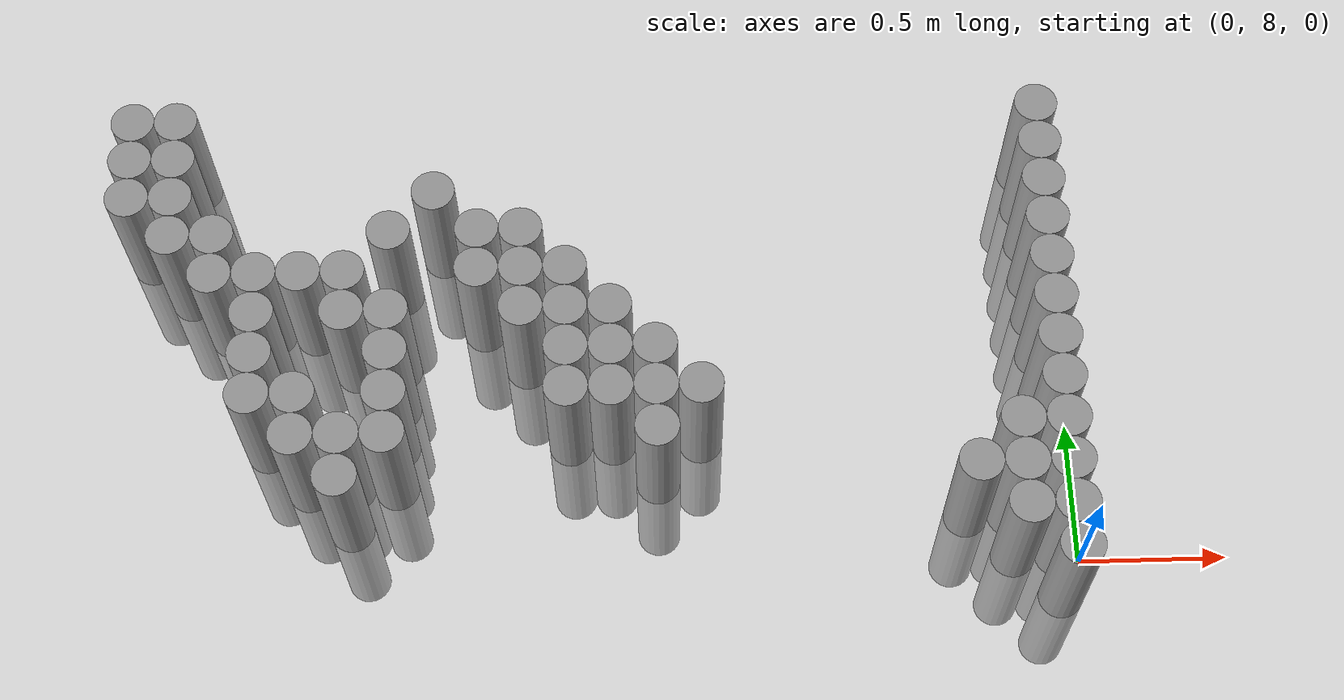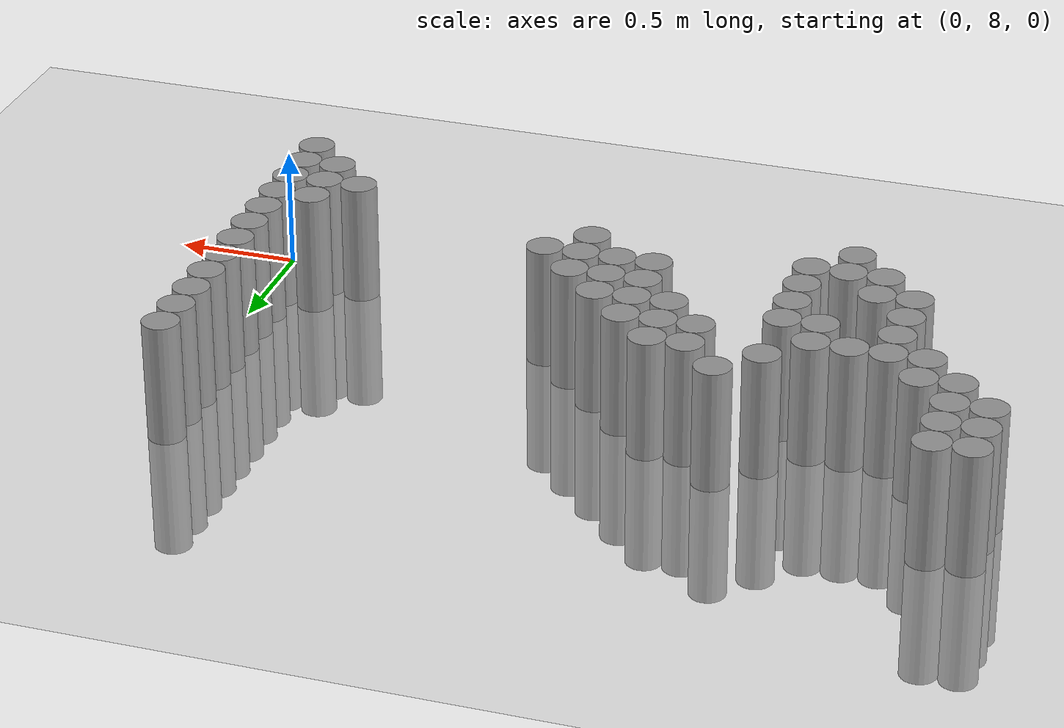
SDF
<sdf version="1.6">
 <world name="default">
  <model name="ground_plane">
   <static>1</static>
   <static>1</static>
   <link name="link">
    <collision name="collision">
     <geometry><plane><normal>0 0 1</normal><size>100 100</size></plane></geometry>
     <surface><friction><ode><mu>100</mu><mu2>50</mu2></ode></friction></surface>
    </collision>
    <visual name="visual">
     <cast_shadows>0</cast_shadows>
     <geometry><plane><normal>0 0 1</normal><size>100 100</size></plane></geometry>
     <material>
      <script><uri>file://media/materials/scripts/gazebo.material</uri><name>Gazebo/Grey</name></script>
     </material>
    </visual>
   </link>
  </model>
  <model name="unit_cylinder_167">
   <static>1</static>
   <pose>-3.225000 9.225000 0.000000 0.000000 0.000000 0.000000</pose>
   <link name="link">
    <inertial>
     <mass>1</mass>
     <inertia><ixx>0.145833</ixx><ixy>0</ixy><ixz>0</ixz><iyy>0.145833</iyy><iyz>0</iyz><izz>0.125</izz></inertia>
    </inertial>
    <collision name="collision">
     <geometry><cylinder><radius>0.075000</radius><length>1</length></cylinder></geometry>
    </collision>
    <visual name="visual">
     <geometry><cylinder><radius>0.075000</radius><length>1</length></cylinder></geometry>
     <material>
      <script><name>Gazebo/Grey</name><uri>file://media/materials/scripts/gazebo.material</uri></script>
     </material>
    </visual>
   </link>
  </model>
  <model name="unit_cylinder_168">
   <static>1</static>
   <pose>-3.225000 9.375000 0.000000 0.000000 0.000000 0.000000</pose>
   <link name="link">
    <inertial>
     <mass>1</mass>
     <inertia><ixx>0.145833</ixx><ixy>0</ixy><ixz>0</ixz><iyy>0.145833</iyy><iyz>0</iyz><izz>0.125</izz></inertia>
    </inertial>
    <collision name="collision">
     <geometry><cylinder><radius>0.075000</radius><length>1</length></cylinder></geometry>
    </collision>
    <visual name="visual">
     <geometry><cylinder><radius>0.075000</radius><length>1</length></cylinder></geometry>
     <material>
      <script><name>Gazebo/Grey</name><uri>file://media/materials/scripts/gazebo.material</uri></script>
     </material>
    </visual>
   </link>
  </model>
  <model name="unit_cylinder_169">
   <static>1</static>
   <pose>-3.225000 9.525000 0.000000 0.000000 0.000000 0.000000</pose>
   <link name="link">
    <inertial>
     <mass>1</mass>
     <inertia><ixx>0.145833</ixx><ixy>0</ixy><ixz>0</ixz><iyy>0.145833</iyy><iyz>0</iyz><izz>0.125</izz></inertia>
    </inertial>
    <collision name="collision">
     <geometry><cylinder><radius>0.075000</radius><length>1</length></cylinder></geometry>
    </collision>
    <visual name="visual">
     <geometry><cylinder><radius>0.075000</radius><length>1</length></cylinder></geometry>
     <material>
      <script><name>Gazebo/Grey</name><uri>file://media/materials/scripts/gazebo.material</uri></script>
     </material>
    </visual>
   </link>
  </model>
  <model name="unit_cylinder_170">
   <static>1</static>
   <pose>-3.075000 9.075000 0.000000 0.000000 0.000000 0.000000</pose>
   <link name="link">
    <inertial>
     <mass>1</mass>
     <inertia><ixx>0.145833</ixx><ixy>0</ixy><ixz>0</ixz><iyy>0.145833</iyy><iyz>0</iyz><izz>0.125</izz></inertia>
    </inertial>
    <collision name="collision">
     <geometry><cylinder><radius>0.075000</radius><length>1</length></cylinder></geometry>
    </collision>
    <visual name="visual">
     <geometry><cylinder><radius>0.075000</radius><length>1</length></cylinder></geometry>
     <material>
      <script><name>Gazebo/Grey</name><uri>file://media/materials/scripts/gazebo.material</uri></script>
     </material>
    </visual>
   </link>
  </model>
  <model name="unit_cylinder_171">
   <static>1</static>
   <pose>-3.075000 9.225000 0.000000 0.000000 0.000000 0.000000</pose>
   <link name="link">
    <inertial>
     <mass>1</mass>
     <inertia><ixx>0.145833</ixx><ixy>0</ixy><ixz>0</ixz><iyy>0.145833</iyy><iyz>0</iyz><izz>0.125</izz></inertia>
    </inertial>
    <collision name="collision">
     <geometry><cylinder><radius>0.075000</radius><length>1</length></cylinder></geometry>
    </collision>
    <visual name="visual">
     <geometry><cylinder><radius>0.075000</radius><length>1</length></cylinder></geometry>
     <material>
      <script><name>Gazebo/Grey</name><uri>file://media/materials/scripts/gazebo.material</uri></script>
     </material>
    </visual>
   </link>
  </model>
  <model name="unit_cylinder_172">
   <static>1</static>
   <pose>-3.075000 9.375000 0.000000 0.000000 0.000000 0.000000</pose>
   <link name="link">
    <inertial>
     <mass>1</mass>
     <inertia><ixx>0.145833</ixx><ixy>0</ixy><ixz>0</ixz><iyy>0.145833</iyy><iyz>0</iyz><izz>0.125</izz></inertia>
    </inertial>
    <collision name="collision">
     <geometry><cylinder><radius>0.075000</radius><length>1</length></cylinder></geometry>
    </collision>
    <visual name="visual">
     <geometry><cylinder><radius>0.075000</radius><length>1</length></cylinder></geometry>
     <material>
      <script><name>Gazebo/Grey</name><uri>file://media/materials/scripts/gazebo.material</uri></script>
     </material>
    </visual>
   </link>
  </model>
  <model name="unit_cylinder_173">
   <static>1</static>
   <pose>-3.075000 9.525000 0.000000 0.000000 0.000000 0.000000</pose>
   <link name="link">
    <inertial>
     <mass>1</mass>
     <inertia><ixx>0.145833</ixx><ixy>0</ixy><ixz>0</ixz><iyy>0.145833</iyy><iyz>0</iyz><izz>0.125</izz></inertia>
    </inertial>
    <collision name="collision">
     <geometry><cylinder><radius>0.075000</radius><length>1</length></cylinder></geometry>
    </collision>
    <visual name="visual">
     <geometry><cylinder><radius>0.075000</radius><length>1</length></cylinder></geometry>
     <material>
      <script><name>Gazebo/Grey</name><uri>file://media/materials/scripts/gazebo.material</uri></script>
     </material>
    </visual>
   </link>
  </model>
  <model name="unit_cylinder_174">
   <static>1</static>
   <pose>-2.925000 8.925000 0.000000 0.000000 0.000000 0.000000</pose>
   <link name="link">
    <inertial>
     <mass>1</mass>
     <inertia><ixx>0.145833</ixx><ixy>0</ixy><ixz>0</ixz><iyy>0.145833</iyy><iyz>0</iyz><izz>0.125</izz></inertia>
    </inertial>
    <collision name="collision">
     <geometry><cylinder><radius>0.075000</radius><length>1</length></cylinder></geometry>
    </collision>
    <visual name="visual">
     <geometry><cylinder><radius>0.075000</radius><length>1</length></cylinder></geometry>
     <material>
      <script><name>Gazebo/Grey</name><uri>file://media/materials/scripts/gazebo.material</uri></script>
     </material>
    </visual>
   </link>
  </model>
  <model name="unit_cylinder_175">
   <static>1</static>
   <pose>-2.925000 9.075000 0.000000 0.000000 0.000000 0.000000</pose>
   <link name="link">
    <inertial>
     <mass>1</mass>
     <inertia><ixx>0.145833</ixx><ixy>0</ixy><ixz>0</ixz><iyy>0.145833</iyy><iyz>0</iyz><izz>0.125</izz></inertia>
    </inertial>
    <collision name="collision">
     <geometry><cylinder><radius>0.075000</radius><length>1</length></cylinder></geometry>
    </collision>
    <visual name="visual">
     <geometry><cylinder><radius>0.075000</radius><length>1</length></cylinder></geometry>
     <material>
      <script><name>Gazebo/Grey</name><uri>file://media/materials/scripts/gazebo.material</uri></script>
     </material>
    </visual>
   </link>
  </model>
  <model name="unit_cylinder_177">
   <static>1</static>
   <pose>-2.775000 8.475000 0.000000 0.000000 0.000000 0.000000</pose>
   <link name="link">
    <inertial>
     <mass>1</mass>
     <inertia><ixx>0.145833</ixx><ixy>0</ixy><ixz>0</ixz><iyy>0.145833</iyy><iyz>0</iyz><izz>0.125</izz></inertia>
    </inertial>
    <collision name="collision">
     <geometry><cylinder><radius>0.075000</radius><length>1</length></cylinder></geometry>
    </collision>
    <visual name="visual">
     <geometry><cylinder><radius>0.075000</radius><length>1</length></cylinder></geometry>
     <material>
      <script><name>Gazebo/Grey</name><uri>file://media/materials/scripts/gazebo.material</uri></script>
     </material>
    </visual>
   </link>
  </model>
  <model name="unit_cylinder_178">
   <static>1</static>
   <pose>-2.775000 8.625000 0.000000 0.000000 0.000000 0.000000</pose>
   <link name="link">
    <inertial>
     <mass>1</mass>
     <inertia><ixx>0.145833</ixx><ixy>0</ixy><ixz>0</ixz><iyy>0.145833</iyy><iyz>0</iyz><izz>0.125</izz></inertia>
    </inertial>
    <collision name="collision">
     <geometry><cylinder><radius>0.075000</radius><length>1</length></cylinder></geometry>
    </collision>
    <visual name="visual">
     <geometry><cylinder><radius>0.075000</radius><length>1</length></cylinder></geometry>
     <material>
      <script><name>Gazebo/Grey</name><uri>file://media/materials/scripts/gazebo.material</uri></script>
     </material>
    </visual>
   </link>
  </model>
  <model name="unit_cylinder_179">
   <static>1</static>
   <pose>-2.775000 8.775000 0.000000 0.000000 0.000000 0.000000</pose>
   <link name="link">
    <inertial>
     <mass>1</mass>
     <inertia><ixx>0.145833</ixx><ixy>0</ixy><ixz>0</ixz><iyy>0.145833</iyy><iyz>0</iyz><izz>0.125</izz></inertia>
    </inertial>
    <collision name="collision">
     <geometry><cylinder><radius>0.075000</radius><length>1</length></cylinder></geometry>
    </collision>
    <visual name="visual">
     <geometry><cylinder><radius>0.075000</radius><length>1</length></cylinder></geometry>
     <material>
      <script><name>Gazebo/Grey</name><uri>file://media/materials/scripts/gazebo.material</uri></script>
     </material>
    </visual>
   </link>
  </model>
  <model name="unit_cylinder_180">
   <static>1</static>
   <pose>-2.775000 8.925000 0.000000 0.000000 0.000000 0.000000</pose>
   <link name="link">
    <inertial>
     <mass>1</mass>
     <inertia><ixx>0.145833</ixx><ixy>0</ixy><ixz>0</ixz><iyy>0.145833</iyy><iyz>0</iyz><izz>0.125</izz></inertia>
    </inertial>
    <collision name="collision">
     <geometry><cylinder><radius>0.075000</radius><length>1</length></cylinder></geometry>
    </collision>
    <visual name="visual">
     <geometry><cylinder><radius>0.075000</radius><length>1</length></cylinder></geometry>
     <material>
      <script><name>Gazebo/Grey</name><uri>file://media/materials/scripts/gazebo.material</uri></script>
     </material>
    </visual>
   </link>
  </model>
  <model name="unit_cylinder_183">
   <static>1</static>
   <pose>-2.625000 8.325000 0.000000 0.000000 0.000000 0.000000</pose>
   <link name="link">
    <inertial>
     <mass>1</mass>
     <inertia><ixx>0.145833</ixx><ixy>0</ixy><ixz>0</ixz><iyy>0.145833</iyy><iyz>0</iyz><izz>0.125</izz></inertia>
    </inertial>
    <collision name="collision">
     <geometry><cylinder><radius>0.075000</radius><length>1</length></cylinder></geometry>
    </collision>
    <visual name="visual">
     <geometry><cylinder><radius>0.075000</radius><length>1</length></cylinder></geometry>
     <material>
      <script><name>Gazebo/Grey</name><uri>file://media/materials/scripts/gazebo.material</uri></script>
     </material>
    </visual>
   </link>
  </model>
  <model name="unit_cylinder_184">
   <static>1</static>
   <pose>-2.625000 8.475000 0.000000 0.000000 0.000000 0.000000</pose>
   <link name="link">
    <inertial>
     <mass>1</mass>
     <inertia><ixx>0.145833</ixx><ixy>0</ixy><ixz>0</ixz><iyy>0.145833</iyy><iyz>0</iyz><izz>0.125</izz></inertia>
    </inertial>
    <collision name="collision">
     <geometry><cylinder><radius>0.075000</radius><length>1</length></cylinder></geometry>
    </collision>
    <visual name="visual">
     <geometry><cylinder><radius>0.075000</radius><length>1</length></cylinder></geometry>
     <material>
      <script><name>Gazebo/Grey</name><uri>file://media/materials/scripts/gazebo.material</uri></script>
     </material>
    </visual>
   </link>
  </model>
  <model name="unit_cylinder_185">
   <static>1</static>
   <pose>-2.625000 8.925000 0.000000 0.000000 0.000000 0.000000</pose>
   <link name="link">
    <inertial>
     <mass>1</mass>
     <inertia><ixx>0.145833</ixx><ixy>0</ixy><ixz>0</ixz><iyy>0.145833</iyy><iyz>0</iyz><izz>0.125</izz></inertia>
    </inertial>
    <collision name="collision">
     <geometry><cylinder><radius>0.075000</radius><length>1</length></cylinder></geometry>
    </collision>
    <visual name="visual">
     <geometry><cylinder><radius>0.075000</radius><length>1</length></cylinder></geometry>
     <material>
      <script><name>Gazebo/Grey</name><uri>file://media/materials/scripts/gazebo.material</uri></script>
     </material>
    </visual>
   </link>
  </model>
  <model name="unit_cylinder_187">
   <static>1</static>
   <pose>-2.475000 8.175000 0.000000 0.000000 0.000000 0.000000</pose>
   <link name="link">
    <inertial>
     <mass>1</mass>
     <inertia><ixx>0.145833</ixx><ixy>0</ixy><ixz>0</ixz><iyy>0.145833</iyy><iyz>0</iyz><izz>0.125</izz></inertia>
    </inertial>
    <collision name="collision">
     <geometry><cylinder><radius>0.075000</radius><length>1</length></cylinder></geometry>
    </collision>
    <visual name="visual">
     <geometry><cylinder><radius>0.075000</radius><length>1</length></cylinder></geometry>
     <material>
      <script><name>Gazebo/Grey</name><uri>file://media/materials/scripts/gazebo.material</uri></script>
     </material>
    </visual>
   </link>
  </model>
  <model name="unit_cylinder_188">
   <static>1</static>
   <pose>-2.475000 8.325000 0.000000 0.000000 0.000000 0.000000</pose>
   <link name="link">
    <inertial>
     <mass>1</mass>
     <inertia><ixx>0.145833</ixx><ixy>0</ixy><ixz>0</ixz><iyy>0.145833</iyy><iyz>0</iyz><izz>0.125</izz></inertia>
    </inertial>
    <collision name="collision">
     <geometry><cylinder><radius>0.075000</radius><length>1</length></cylinder></geometry>
    </collision>
    <visual name="visual">
     <geometry><cylinder><radius>0.075000</radius><length>1</length></cylinder></geometry>
     <material>
      <script><name>Gazebo/Grey</name><uri>file://media/materials/scripts/gazebo.material</uri></script>
     </material>
    </visual>
   </link>
  </model>
  <model name="unit_cylinder_189">
   <static>1</static>
   <pose>-2.475000 8.775000 0.000000 0.000000 0.000000 0.000000</pose>
   <link name="link">
    <inertial>
     <mass>1</mass>
     <inertia><ixx>0.145833</ixx><ixy>0</ixy><ixz>0</ixz><iyy>0.145833</iyy><iyz>0</iyz><izz>0.125</izz></inertia>
    </inertial>
    <collision name="collision">
     <geometry><cylinder><radius>0.075000</radius><length>1</length></cylinder></geometry>
    </collision>
    <visual name="visual">
     <geometry><cylinder><radius>0.075000</radius><length>1</length></cylinder></geometry>
     <material>
      <script><name>Gazebo/Grey</name><uri>file://media/materials/scripts/gazebo.material</uri></script>
     </material>
    </visual>
   </link>
  </model>
  <model name="unit_cylinder_190">
   <static>1</static>
   <pose>-2.475000 8.925000 0.000000 0.000000 0.000000 0.000000</pose>
   <link name="link">
    <inertial>
     <mass>1</mass>
     <inertia><ixx>0.145833</ixx><ixy>0</ixy><ixz>0</ixz><iyy>0.145833</iyy><iyz>0</iyz><izz>0.125</izz></inertia>
    </inertial>
    <collision name="collision">
     <geometry><cylinder><radius>0.075000</radius><length>1</length></cylinder></geometry>
    </collision>
    <visual name="visual">
     <geometry><cylinder><radius>0.075000</radius><length>1</length></cylinder></geometry>
     <material>
      <script><name>Gazebo/Grey</name><uri>file://media/materials/scripts/gazebo.material</uri></script>
     </material>
    </visual>
   </link>
  </model>
  <model name="unit_cylinder_191">
   <static>1</static>
   <pose>-2.325000 8.325000 0.000000 0.000000 0.000000 0.000000</pose>
   <link name="link">
    <inertial>
     <mass>1</mass>
     <inertia><ixx>0.145833</ixx><ixy>0</ixy><ixz>0</ixz><iyy>0.145833</iyy><iyz>0</iyz><izz>0.125</izz></inertia>
    </inertial>
    <collision name="collision">
     <geometry><cylinder><radius>0.075000</radius><length>1</length></cylinder></geometry>
    </collision>
    <visual name="visual">
     <geometry><cylinder><radius>0.075000</radius><length>1</length></cylinder></geometry>
     <material>
      <script><name>Gazebo/Grey</name><uri>file://media/materials/scripts/gazebo.material</uri></script>
     </material>
    </visual>
   </link>
  </model>
  <model name="unit_cylinder_192">
   <static>1</static>
   <pose>-2.325000 8.475000 0.000000 0.000000 0.000000 0.000000</pose>
   <link name="link">
    <inertial>
     <mass>1</mass>
     <inertia><ixx>0.145833</ixx><ixy>0</ixy><ixz>0</ixz><iyy>0.145833</iyy><iyz>0</iyz><izz>0.125</izz></inertia>
    </inertial>
    <collision name="collision">
     <geometry><cylinder><radius>0.075000</radius><length>1</length></cylinder></geometry>
    </collision>
    <visual name="visual">
     <geometry><cylinder><radius>0.075000</radius><length>1</length></cylinder></geometry>
     <material>
      <script><name>Gazebo/Grey</name><uri>file://media/materials/scripts/gazebo.material</uri></script>
     </material>
    </visual>
   </link>
  </model>
  <model name="unit_cylinder_193">
   <static>1</static>
   <pose>-2.325000 8.625000 0.000000 0.000000 0.000000 0.000000</pose>
   <link name="link">
    <inertial>
     <mass>1</mass>
     <inertia><ixx>0.145833</ixx><ixy>0</ixy><ixz>0</ixz><iyy>0.145833</iyy><iyz>0</iyz><izz>0.125</izz></inertia>
    </inertial>
    <collision name="collision">
     <geometry><cylinder><radius>0.075000</radius><length>1</length></cylinder></geometry>
    </collision>
    <visual name="visual">
     <geometry><cylinder><radius>0.075000</radius><length>1</length></cylinder></geometry>
     <material>
      <script><name>Gazebo/Grey</name><uri>file://media/materials/scripts/gazebo.material</uri></script>
     </material>
    </visual>
   </link>
  </model>
  <model name="unit_cylinder_194">
   <static>1</static>
   <pose>-2.325000 8.775000 0.000000 0.000000 0.000000 0.000000</pose>
   <link name="link">
    <inertial>
     <mass>1</mass>
     <inertia><ixx>0.145833</ixx><ixy>0</ixy><ixz>0</ixz><iyy>0.145833</iyy><iyz>0</iyz><izz>0.125</izz></inertia>
    </inertial>
    <collision name="collision">
     <geometry><cylinder><radius>0.075000</radius><length>1</length></cylinder></geometry>
    </collision>
    <visual name="visual">
     <geometry><cylinder><radius>0.075000</radius><length>1</length></cylinder></geometry>
     <material>
      <script><name>Gazebo/Grey</name><uri>file://media/materials/scripts/gazebo.material</uri></script>
     </material>
    </visual>
   </link>
  </model>
  <model name="unit_cylinder_195">
   <static>1</static>
   <pose>-2.325000 9.075000 0.000000 0.000000 0.000000 0.000000</pose>
   <link name="link">
    <inertial>
     <mass>1</mass>
     <inertia><ixx>0.145833</ixx><ixy>0</ixy><ixz>0</ixz><iyy>0.145833</iyy><iyz>0</iyz><izz>0.125</izz></inertia>
    </inertial>
    <collision name="collision">
     <geometry><cylinder><radius>0.075000</radius><length>1</length></cylinder></geometry>
    </collision>
    <visual name="visual">
     <geometry><cylinder><radius>0.075000</radius><length>1</length></cylinder></geometry>
     <material>
      <script><name>Gazebo/Grey</name><uri>file://media/materials/scripts/gazebo.material</uri></script>
     </material>
    </visual>
   </link>
  </model>
  <model name="unit_cylinder_196">
   <static>1</static>
   <pose>-2.175000 9.225000 0.000000 0.000000 0.000000 0.000000</pose>
   <link name="link">
    <inertial>
     <mass>1</mass>
     <inertia><ixx>0.145833</ixx><ixy>0</ixy><ixz>0</ixz><iyy>0.145833</iyy><iyz>0</iyz><izz>0.125</izz></inertia>
    </inertial>
    <collision name="collision">
     <geometry><cylinder><radius>0.075000</radius><length>1</length></cylinder></geometry>
    </collision>
    <visual name="visual">
     <geometry><cylinder><radius>0.075000</radius><length>1</length></cylinder></geometry>
     <material>
      <script><name>Gazebo/Grey</name><uri>file://media/materials/scripts/gazebo.material</uri></script>
     </material>
    </visual>
   </link>
  </model>
  <model name="unit_cylinder_197">
   <static>1</static>
   <pose>-2.025000 8.925000 0.000000 0.000000 0.000000 0.000000</pose>
   <link name="link">
    <inertial>
     <mass>1</mass>
     <inertia><ixx>0.145833</ixx><ixy>0</ixy><ixz>0</ixz><iyy>0.145833</iyy><iyz>0</iyz><izz>0.125</izz></inertia>
    </inertial>
    <collision name="collision">
     <geometry><cylinder><radius>0.075000</radius><length>1</length></cylinder></geometry>
    </collision>
    <visual name="visual">
     <geometry><cylinder><radius>0.075000</radius><length>1</length></cylinder></geometry>
     <material>
      <script><name>Gazebo/Grey</name><uri>file://media/materials/scripts/gazebo.material</uri></script>
     </material>
    </visual>
   </link>
  </model>
  <model name="unit_cylinder_198">
   <static>1</static>
   <pose>-2.025000 9.075000 0.000000 0.000000 0.000000 0.000000</pose>
   <link name="link">
    <inertial>
     <mass>1</mass>
     <inertia><ixx>0.145833</ixx><ixy>0</ixy><ixz>0</ixz><iyy>0.145833</iyy><iyz>0</iyz><izz>0.125</izz></inertia>
    </inertial>
    <collision name="collision">
     <geometry><cylinder><radius>0.075000</radius><length>1</length></cylinder></geometry>
    </collision>
    <visual name="visual">
     <geometry><cylinder><radius>0.075000</radius><length>1</length></cylinder></geometry>
     <material>
      <script><name>Gazebo/Grey</name><uri>file://media/materials/scripts/gazebo.material</uri></script>
     </material>
    </visual>
   </link>
  </model>
  <model name="unit_cylinder_199">
   <static>1</static>
   <pose>-1.875000 8.775000 0.000000 0.000000 0.000000 0.000000</pose>
   <link name="link">
    <inertial>
     <mass>1</mass>
     <inertia><ixx>0.145833</ixx><ixy>0</ixy><ixz>0</ixz><iyy>0.145833</iyy><iyz>0</iyz><izz>0.125</izz></inertia>
    </inertial>
    <collision name="collision">
     <geometry><cylinder><radius>0.075000</radius><length>1</length></cylinder></geometry>
    </collision>
    <visual name="visual">
     <geometry><cylinder><radius>0.075000</radius><length>1</length></cylinder></geometry>
     <material>
      <script><name>Gazebo/Grey</name><uri>file://media/materials/scripts/gazebo.material</uri></script>
     </material>
    </visual>
   </link>
  </model>
  <model name="unit_cylinder_200">
   <static>1</static>
   <pose>-1.875000 8.925000 0.000000 0.000000 0.000000 0.000000</pose>
   <link name="link">
    <inertial>
     <mass>1</mass>
     <inertia><ixx>0.145833</ixx><ixy>0</ixy><ixz>0</ixz><iyy>0.145833</iyy><iyz>0</iyz><izz>0.125</izz></inertia>
    </inertial>
    <collision name="collision">
     <geometry><cylinder><radius>0.075000</radius><length>1</length></cylinder></geometry>
    </collision>
    <visual name="visual">
     <geometry><cylinder><radius>0.075000</radius><length>1</length></cylinder></geometry>
     <material>
      <script><name>Gazebo/Grey</name><uri>file://media/materials/scripts/gazebo.material</uri></script>
     </material>
    </visual>
   </link>
  </model>
  <model name="unit_cylinder_201">
   <static>1</static>
   <pose>-1.875000 9.075000 0.000000 0.000000 0.000000 0.000000</pose>
   <link name="link">
    <inertial>
     <mass>1</mass>
     <inertia><ixx>0.145833</ixx><ixy>0</ixy><ixz>0</ixz><iyy>0.145833</iyy><iyz>0</iyz><izz>0.125</izz></inertia>
    </inertial>
    <collision name="collision">
     <geometry><cylinder><radius>0.075000</radius><length>1</length></cylinder></geometry>
    </collision>
    <visual name="visual">
     <geometry><cylinder><radius>0.075000</radius><length>1</length></cylinder></geometry>
     <material>
      <script><name>Gazebo/Grey</name><uri>file://media/materials/scripts/gazebo.material</uri></script>
     </material>
    </visual>
   </link>
  </model>
  <model name="unit_cylinder_203">
   <static>1</static>
   <pose>-1.725000 8.475000 0.000000 0.000000 0.000000 0.000000</pose>
   <link name="link">
    <inertial>
     <mass>1</mass>
     <inertia><ixx>0.145833</ixx><ixy>0</ixy><ixz>0</ixz><iyy>0.145833</iyy><iyz>0</iyz><izz>0.125</izz></inertia>
    </inertial>
    <collision name="collision">
     <geometry><cylinder><radius>0.075000</radius><length>1</length></cylinder></geometry>
    </collision>
    <visual name="visual">
     <geometry><cylinder><radius>0.075000</radius><length>1</length></cylinder></geometry>
     <material>
      <script><name>Gazebo/Grey</name><uri>file://media/materials/scripts/gazebo.material</uri></script>
     </material>
    </visual>
   </link>
  </model>
  <model name="unit_cylinder_204">
   <static>1</static>
   <pose>-1.725000 8.625000 0.000000 0.000000 0.000000 0.000000</pose>
   <link name="link">
    <inertial>
     <mass>1</mass>
     <inertia><ixx>0.145833</ixx><ixy>0</ixy><ixz>0</ixz><iyy>0.145833</iyy><iyz>0</iyz><izz>0.125</izz></inertia>
    </inertial>
    <collision name="collision">
     <geometry><cylinder><radius>0.075000</radius><length>1</length></cylinder></geometry>
    </collision>
    <visual name="visual">
     <geometry><cylinder><radius>0.075000</radius><length>1</length></cylinder></geometry>
     <material>
      <script><name>Gazebo/Grey</name><uri>file://media/materials/scripts/gazebo.material</uri></script>
     </material>
    </visual>
   </link>
  </model>
  <model name="unit_cylinder_205">
   <static>1</static>
   <pose>-1.725000 8.775000 0.000000 0.000000 0.000000 0.000000</pose>
   <link name="link">
    <inertial>
     <mass>1</mass>
     <inertia><ixx>0.145833</ixx><ixy>0</ixy><ixz>0</ixz><iyy>0.145833</iyy><iyz>0</iyz><izz>0.125</izz></inertia>
    </inertial>
    <collision name="collision">
     <geometry><cylinder><radius>0.075000</radius><length>1</length></cylinder></geometry>
    </collision>
    <visual name="visual">
     <geometry><cylinder><radius>0.075000</radius><length>1</length></cylinder></geometry>
     <material>
      <script><name>Gazebo/Grey</name><uri>file://media/materials/scripts/gazebo.material</uri></script>
     </material>
    </visual>
   </link>
  </model>
  <model name="unit_cylinder_206">
   <static>1</static>
   <pose>-1.725000 8.925000 0.000000 0.000000 0.000000 0.000000</pose>
   <link name="link">
    <inertial>
     <mass>1</mass>
     <inertia><ixx>0.145833</ixx><ixy>0</ixy><ixz>0</ixz><iyy>0.145833</iyy><iyz>0</iyz><izz>0.125</izz></inertia>
    </inertial>
    <collision name="collision">
     <geometry><cylinder><radius>0.075000</radius><length>1</length></cylinder></geometry>
    </collision>
    <visual name="visual">
     <geometry><cylinder><radius>0.075000</radius><length>1</length></cylinder></geometry>
     <material>
      <script><name>Gazebo/Grey</name><uri>file://media/materials/scripts/gazebo.material</uri></script>
     </material>
    </visual>
   </link>
  </model>
  <model name="unit_cylinder_210">
   <static>1</static>
   <pose>-1.575000 8.475000 0.000000 0.000000 0.000000 0.000000</pose>
   <link name="link">
    <inertial>
     <mass>1</mass>
     <inertia><ixx>0.145833</ixx><ixy>0</ixy><ixz>0</ixz><iyy>0.145833</iyy><iyz>0</iyz><izz>0.125</izz></inertia>
    </inertial>
    <collision name="collision">
     <geometry><cylinder><radius>0.075000</radius><length>1</length></cylinder></geometry>
    </collision>
    <visual name="visual">
     <geometry><cylinder><radius>0.075000</radius><length>1</length></cylinder></geometry>
     <material>
      <script><name>Gazebo/Grey</name><uri>file://media/materials/scripts/gazebo.material</uri></script>
     </material>
    </visual>
   </link>
  </model>
  <model name="unit_cylinder_211">
   <static>1</static>
   <pose>-1.575000 8.625000 0.000000 0.000000 0.000000 0.000000</pose>
   <link name="link">
    <inertial>
     <mass>1</mass>
     <inertia><ixx>0.145833</ixx><ixy>0</ixy><ixz>0</ixz><iyy>0.145833</iyy><iyz>0</iyz><izz>0.125</izz></inertia>
    </inertial>
    <collision name="collision">
     <geometry><cylinder><radius>0.075000</radius><length>1</length></cylinder></geometry>
    </collision>
    <visual name="visual">
     <geometry><cylinder><radius>0.075000</radius><length>1</length></cylinder></geometry>
     <material>
      <script><name>Gazebo/Grey</name><uri>file://media/materials/scripts/gazebo.material</uri></script>
     </material>
    </visual>
   </link>
  </model>
  <model name="unit_cylinder_212">
   <static>1</static>
   <pose>-1.575000 8.775000 0.000000 0.000000 0.000000 0.000000</pose>
   <link name="link">
    <inertial>
     <mass>1</mass>
     <inertia><ixx>0.145833</ixx><ixy>0</ixy><ixz>0</ixz><iyy>0.145833</iyy><iyz>0</iyz><izz>0.125</izz></inertia>
    </inertial>
    <collision name="collision">
     <geometry><cylinder><radius>0.075000</radius><length>1</length></cylinder></geometry>
    </collision>
    <visual name="visual">
     <geometry><cylinder><radius>0.075000</radius><length>1</length></cylinder></geometry>
     <material>
      <script><name>Gazebo/Grey</name><uri>file://media/materials/scripts/gazebo.material</uri></script>
     </material>
    </visual>
   </link>
  </model>
  <model name="unit_cylinder_217">
   <static>1</static>
   <pose>-1.425000 8.325000 0.000000 0.000000 0.000000 0.000000</pose>
   <link name="link">
    <inertial>
     <mass>1</mass>
     <inertia><ixx>0.145833</ixx><ixy>0</ixy><ixz>0</ixz><iyy>0.145833</iyy><iyz>0</iyz><izz>0.125</izz></inertia>
    </inertial>
    <collision name="collision">
     <geometry><cylinder><radius>0.075000</radius><length>1</length></cylinder></geometry>
    </collision>
    <visual name="visual">
     <geometry><cylinder><radius>0.075000</radius><length>1</length></cylinder></geometry>
     <material>
      <script><name>Gazebo/Grey</name><uri>file://media/materials/scripts/gazebo.material</uri></script>
     </material>
    </visual>
   </link>
  </model>
  <model name="unit_cylinder_218">
   <static>1</static>
   <pose>-1.425000 8.475000 0.000000 0.000000 0.000000 0.000000</pose>
   <link name="link">
    <inertial>
     <mass>1</mass>
     <inertia><ixx>0.145833</ixx><ixy>0</ixy><ixz>0</ixz><iyy>0.145833</iyy><iyz>0</iyz><izz>0.125</izz></inertia>
    </inertial>
    <collision name="collision">
     <geometry><cylinder><radius>0.075000</radius><length>1</length></cylinder></geometry>
    </collision>
    <visual name="visual">
     <geometry><cylinder><radius>0.075000</radius><length>1</length></cylinder></geometry>
     <material>
      <script><name>Gazebo/Grey</name><uri>file://media/materials/scripts/gazebo.material</uri></script>
     </material>
    </visual>
   </link>
  </model>
  <model name="unit_cylinder_219">
   <static>1</static>
   <pose>-1.425000 8.625000 0.000000 0.000000 0.000000 0.000000</pose>
   <link name="link">
    <inertial>
     <mass>1</mass>
     <inertia><ixx>0.145833</ixx><ixy>0</ixy><ixz>0</ixz><iyy>0.145833</iyy><iyz>0</iyz><izz>0.125</izz></inertia>
    </inertial>
    <collision name="collision">
     <geometry><cylinder><radius>0.075000</radius><length>1</length></cylinder></geometry>
    </collision>
    <visual name="visual">
     <geometry><cylinder><radius>0.075000</radius><length>1</length></cylinder></geometry>
     <material>
      <script><name>Gazebo/Grey</name><uri>file://media/materials/scripts/gazebo.material</uri></script>
     </material>
    </visual>
   </link>
  </model>
  <model name="unit_cylinder_221">
   <static>1</static>
   <pose>-1.275000 8.475000 0.000000 0.000000 0.000000 0.000000</pose>
   <link name="link">
    <inertial>
     <mass>1</mass>
     <inertia><ixx>0.145833</ixx><ixy>0</ixy><ixz>0</ixz><iyy>0.145833</iyy><iyz>0</iyz><izz>0.125</izz></inertia>
    </inertial>
    <collision name="collision">
     <geometry><cylinder><radius>0.075000</radius><length>1</length></cylinder></geometry>
    </collision>
    <visual name="visual">
     <geometry><cylinder><radius>0.075000</radius><length>1</length></cylinder></geometry>
     <material>
      <script><name>Gazebo/Grey</name><uri>file://media/materials/scripts/gazebo.material</uri></script>
     </material>
    </visual>
   </link>
  </model>
  <model name="unit_cylinder_242">
   <static>1</static>
   <pose>-0.375000 8.175000 0.000000 0.000000 0.000000 0.000000</pose>
   <link name="link">
    <inertial>
     <mass>1</mass>
     <inertia><ixx>0.145833</ixx><ixy>0</ixy><ixz>0</ixz><iyy>0.145833</iyy><iyz>0</iyz><izz>0.125</izz></inertia>
    </inertial>
    <collision name="collision">
     <geometry><cylinder><radius>0.075000</radius><length>1</length></cylinder></geometry>
    </collision>
    <visual name="visual">
     <geometry><cylinder><radius>0.075000</radius><length>1</length></cylinder></geometry>
     <material>
      <script><name>Gazebo/Grey</name><uri>file://media/materials/scripts/gazebo.material</uri></script>
     </material>
    </visual>
   </link>
  </model>
  <model name="unit_cylinder_254">
   <static>1</static>
   <pose>-0.225000 8.025000 0.000000 0.000000 0.000000 0.000000</pose>
   <link name="link">
    <inertial>
     <mass>1</mass>
     <inertia><ixx>0.145833</ixx><ixy>0</ixy><ixz>0</ixz><iyy>0.145833</iyy><iyz>0</iyz><izz>0.125</izz></inertia>
    </inertial>
    <collision name="collision">
     <geometry><cylinder><radius>0.075000</radius><length>1</length></cylinder></geometry>
    </collision>
    <visual name="visual">
     <geometry><cylinder><radius>0.075000</radius><length>1</length></cylinder></geometry>
     <material>
      <script><name>Gazebo/Grey</name><uri>file://media/materials/scripts/gazebo.material</uri></script>
     </material>
    </visual>
   </link>
  </model>
  <model name="unit_cylinder_255">
   <static>1</static>
   <pose>-0.225000 8.175000 0.000000 0.000000 0.000000 0.000000</pose>
   <link name="link">
    <inertial>
     <mass>1</mass>
     <inertia><ixx>0.145833</ixx><ixy>0</ixy><ixz>0</ixz><iyy>0.145833</iyy><iyz>0</iyz><izz>0.125</izz></inertia>
    </inertial>
    <collision name="collision">
     <geometry><cylinder><radius>0.075000</radius><length>1</length></cylinder></geometry>
    </collision>
    <visual name="visual">
     <geometry><cylinder><radius>0.075000</radius><length>1</length></cylinder></geometry>
     <material>
      <script><name>Gazebo/Grey</name><uri>file://media/materials/scripts/gazebo.material</uri></script>
     </material>
    </visual>
   </link>
  </model>
  <model name="unit_cylinder_256">
   <static>1</static>
   <pose>-0.225000 8.325000 0.000000 0.000000 0.000000 0.000000</pose>
   <link name="link">
    <inertial>
     <mass>1</mass>
     <inertia><ixx>0.145833</ixx><ixy>0</ixy><ixz>0</ixz><iyy>0.145833</iyy><iyz>0</iyz><izz>0.125</izz></inertia>
    </inertial>
    <collision name="collision">
     <geometry><cylinder><radius>0.075000</radius><length>1</length></cylinder></geometry>
    </collision>
    <visual name="visual">
     <geometry><cylinder><radius>0.075000</radius><length>1</length></cylinder></geometry>
     <material>
      <script><name>Gazebo/Grey</name><uri>file://media/materials/scripts/gazebo.material</uri></script>
     </material>
    </visual>
   </link>
  </model>
  <model name="unit_cylinder_275">
   <static>1</static>
   <pose>-0.075000 7.875000 0.000000 0.000000 0.000000 0.000000</pose>
   <link name="link">
    <inertial>
     <mass>1</mass>
     <inertia><ixx>0.145833</ixx><ixy>0</ixy><ixz>0</ixz><iyy>0.145833</iyy><iyz>0</iyz><izz>0.125</izz></inertia>
    </inertial>
    <collision name="collision">
     <geometry><cylinder><radius>0.075000</radius><length>1</length></cylinder></geometry>
    </collision>
    <visual name="visual">
     <geometry><cylinder><radius>0.075000</radius><length>1</length></cylinder></geometry>
     <material>
      <script><name>Gazebo/Grey</name><uri>file://media/materials/scripts/gazebo.material</uri></script>
     </material>
    </visual>
   </link>
  </model>
  <model name="unit_cylinder_276">
   <static>1</static>
   <pose>-0.075000 8.025000 0.000000 0.000000 0.000000 0.000000</pose>
   <link name="link">
    <inertial>
     <mass>1</mass>
     <inertia><ixx>0.145833</ixx><ixy>0</ixy><ixz>0</ixz><iyy>0.145833</iyy><iyz>0</iyz><izz>0.125</izz></inertia>
    </inertial>
    <collision name="collision">
     <geometry><cylinder><radius>0.075000</radius><length>1</length></cylinder></geometry>
    </collision>
    <visual name="visual">
     <geometry><cylinder><radius>0.075000</radius><length>1</length></cylinder></geometry>
     <material>
      <script><name>Gazebo/Grey</name><uri>file://media/materials/scripts/gazebo.material</uri></script>
     </material>
    </visual>
   </link>
  </model>
  <model name="unit_cylinder_277">
   <static>1</static>
   <pose>-0.075000 8.175000 0.000000 0.000000 0.000000 0.000000</pose>
   <link name="link">
    <inertial>
     <mass>1</mass>
     <inertia><ixx>0.145833</ixx><ixy>0</ixy><ixz>0</ixz><iyy>0.145833</iyy><iyz>0</iyz><izz>0.125</izz></inertia>
    </inertial>
    <collision name="collision">
     <geometry><cylinder><radius>0.075000</radius><length>1</length></cylinder></geometry>
    </collision>
    <visual name="visual">
     <geometry><cylinder><radius>0.075000</radius><length>1</length></cylinder></geometry>
     <material>
      <script><name>Gazebo/Grey</name><uri>file://media/materials/scripts/gazebo.material</uri></script>
     </material>
    </visual>
   </link>
  </model>
  <model name="unit_cylinder_278">
   <static>1</static>
   <pose>-0.075000 8.325000 0.000000 0.000000 0.000000 0.000000</pose>
   <link name="link">
    <inertial>
     <mass>1</mass>
     <inertia><ixx>0.145833</ixx><ixy>0</ixy><ixz>0</ixz><iyy>0.145833</iyy><iyz>0</iyz><izz>0.125</izz></inertia>
    </inertial>
    <collision name="collision">
     <geometry><cylinder><radius>0.075000</radius><length>1</length></cylinder></geometry>
    </collision>
    <visual name="visual">
     <geometry><cylinder><radius>0.075000</radius><length>1</length></cylinder></geometry>
     <material>
      <script><name>Gazebo/Grey</name><uri>file://media/materials/scripts/gazebo.material</uri></script>
     </material>
    </visual>
   </link>
  </model>
  <model name="unit_cylinder_279">
   <static>1</static>
   <pose>-0.075000 8.475000 0.000000 0.000000 0.000000 0.000000</pose>
   <link name="link">
    <inertial>
     <mass>1</mass>
     <inertia><ixx>0.145833</ixx><ixy>0</ixy><ixz>0</ixz><iyy>0.145833</iyy><iyz>0</iyz><izz>0.125</izz></inertia>
    </inertial>
    <collision name="collision">
     <geometry><cylinder><radius>0.075000</radius><length>1</length></cylinder></geometry>
    </collision>
    <visual name="visual">
     <geometry><cylinder><radius>0.075000</radius><length>1</length></cylinder></geometry>
     <material>
      <script><name>Gazebo/Grey</name><uri>file://media/materials/scripts/gazebo.material</uri></script>
     </material>
    </visual>
   </link>
  </model>
  <model name="unit_cylinder_280">
   <static>1</static>
   <pose>-0.075000 8.625000 0.000000 0.000000 0.000000 0.000000</pose>
   <link name="link">
    <inertial>
     <mass>1</mass>
     <inertia><ixx>0.145833</ixx><ixy>0</ixy><ixz>0</ixz><iyy>0.145833</iyy><iyz>0</iyz><izz>0.125</izz></inertia>
    </inertial>
    <collision name="collision">
     <geometry><cylinder><radius>0.075000</radius><length>1</length></cylinder></geometry>
    </collision>
    <visual name="visual">
     <geometry><cylinder><radius>0.075000</radius><length>1</length></cylinder></geometry>
     <material>
      <script><name>Gazebo/Grey</name><uri>file://media/materials/scripts/gazebo.material</uri></script>
     </material>
    </visual>
   </link>
  </model>
  <model name="unit_cylinder_281">
   <static>1</static>
   <pose>-0.075000 8.775000 0.000000 0.000000 0.000000 0.000000</pose>
   <link name="link">
    <inertial>
     <mass>1</mass>
     <inertia><ixx>0.145833</ixx><ixy>0</ixy><ixz>0</ixz><iyy>0.145833</iyy><iyz>0</iyz><izz>0.125</izz></inertia>
    </inertial>
    <collision name="collision">
     <geometry><cylinder><radius>0.075000</radius><length>1</length></cylinder></geometry>
    </collision>
    <visual name="visual">
     <geometry><cylinder><radius>0.075000</radius><length>1</length></cylinder></geometry>
     <material>
      <script><name>Gazebo/Grey</name><uri>file://media/materials/scripts/gazebo.material</uri></script>
     </material>
    </visual>
   </link>
  </model>
  <model name="unit_cylinder_282">
   <static>1</static>
   <pose>-0.075000 8.925000 0.000000 0.000000 0.000000 0.000000</pose>
   <link name="link">
    <inertial>
     <mass>1</mass>
     <inertia><ixx>0.145833</ixx><ixy>0</ixy><ixz>0</ixz><iyy>0.145833</iyy><iyz>0</iyz><izz>0.125</izz></inertia>
    </inertial>
    <collision name="collision">
     <geometry><cylinder><radius>0.075000</radius><length>1</length></cylinder></geometry>
    </collision>
    <visual name="visual">
     <geometry><cylinder><radius>0.075000</radius><length>1</length></cylinder></geometry>
     <material>
      <script><name>Gazebo/Grey</name><uri>file://media/materials/scripts/gazebo.material</uri></script>
     </material>
    </visual>
   </link>
  </model>
  <model name="unit_cylinder_283">
   <static>1</static>
   <pose>-0.075000 9.075000 0.000000 0.000000 0.000000 0.000000</pose>
   <link name="link">
    <inertial>
     <mass>1</mass>
     <inertia><ixx>0.145833</ixx><ixy>0</ixy><ixz>0</ixz><iyy>0.145833</iyy><iyz>0</iyz><izz>0.125</izz></inertia>
    </inertial>
    <collision name="collision">
     <geometry><cylinder><radius>0.075000</radius><length>1</length></cylinder></geometry>
    </collision>
    <visual name="visual">
     <geometry><cylinder><radius>0.075000</radius><length>1</length></cylinder></geometry>
     <material>
      <script><name>Gazebo/Grey</name><uri>file://media/materials/scripts/gazebo.material</uri></script>
     </material>
    </visual>
   </link>
  </model>
  <model name="unit_cylinder_284">
   <static>1</static>
   <pose>-0.075000 9.225000 0.000000 0.000000 0.000000 0.000000</pose>
   <link name="link">
    <inertial>
     <mass>1</mass>
     <inertia><ixx>0.145833</ixx><ixy>0</ixy><ixz>0</ixz><iyy>0.145833</iyy><iyz>0</iyz><izz>0.125</izz></inertia>
    </inertial>
    <collision name="collision">
     <geometry><cylinder><radius>0.075000</radius><length>1</length></cylinder></geometry>
    </collision>
    <visual name="visual">
     <geometry><cylinder><radius>0.075000</radius><length>1</length></cylinder></geometry>
     <material>
      <script><name>Gazebo/Grey</name><uri>file://media/materials/scripts/gazebo.material</uri></script>
     </material>
    </visual>
   </link>
  </model>
  <model name="unit_cylinder_285">
   <static>1</static>
   <pose>-0.075000 9.375000 0.000000 0.000000 0.000000 0.000000</pose>
   <link name="link">
    <inertial>
     <mass>1</mass>
     <inertia><ixx>0.145833</ixx><ixy>0</ixy><ixz>0</ixz><iyy>0.145833</iyy><iyz>0</iyz><izz>0.125</izz></inertia>
    </inertial>
    <collision name="collision">
     <geometry><cylinder><radius>0.075000</radius><length>1</length></cylinder></geometry>
    </collision>
    <visual name="visual">
     <geometry><cylinder><radius>0.075000</radius><length>1</length></cylinder></geometry>
     <material>
      <script><name>Gazebo/Grey</name><uri>file://media/materials/scripts/gazebo.material</uri></script>
     </material>
    </visual>
   </link>
  </model>
  <model name="unit_cylinder_286">
   <static>1</static>
   <pose>-0.075000 9.525000 0.000000 0.000000 0.000000 0.000000</pose>
   <link name="link">
    <inertial>
     <mass>1</mass>
     <inertia><ixx>0.145833</ixx><ixy>0</ixy><ixz>0</ixz><iyy>0.145833</iyy><iyz>0</iyz><izz>0.125</izz></inertia>
    </inertial>
    <collision name="collision">
     <geometry><cylinder><radius>0.075000</radius><length>1</length></cylinder></geometry>
    </collision>
    <visual name="visual">
     <geometry><cylinder><radius>0.075000</radius><length>1</length></cylinder></geometry>
     <material>
      <script><name>Gazebo/Grey</name><uri>file://media/materials/scripts/gazebo.material</uri></script>
     </material>
    </visual>
   </link>
  </model>
 </world>
</sdf>
